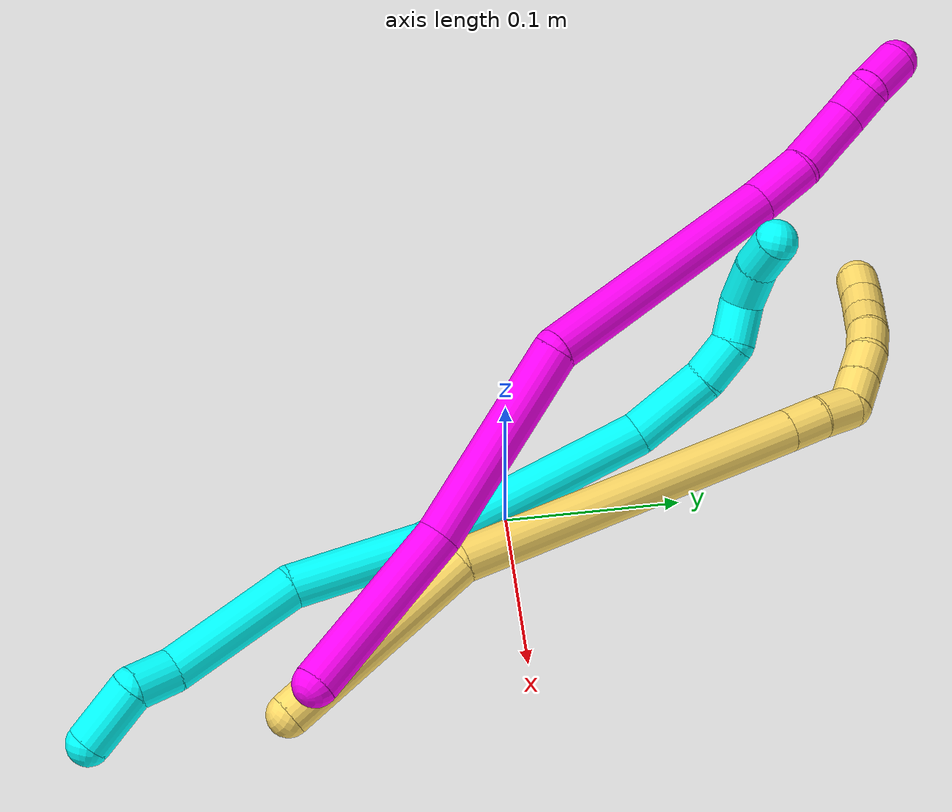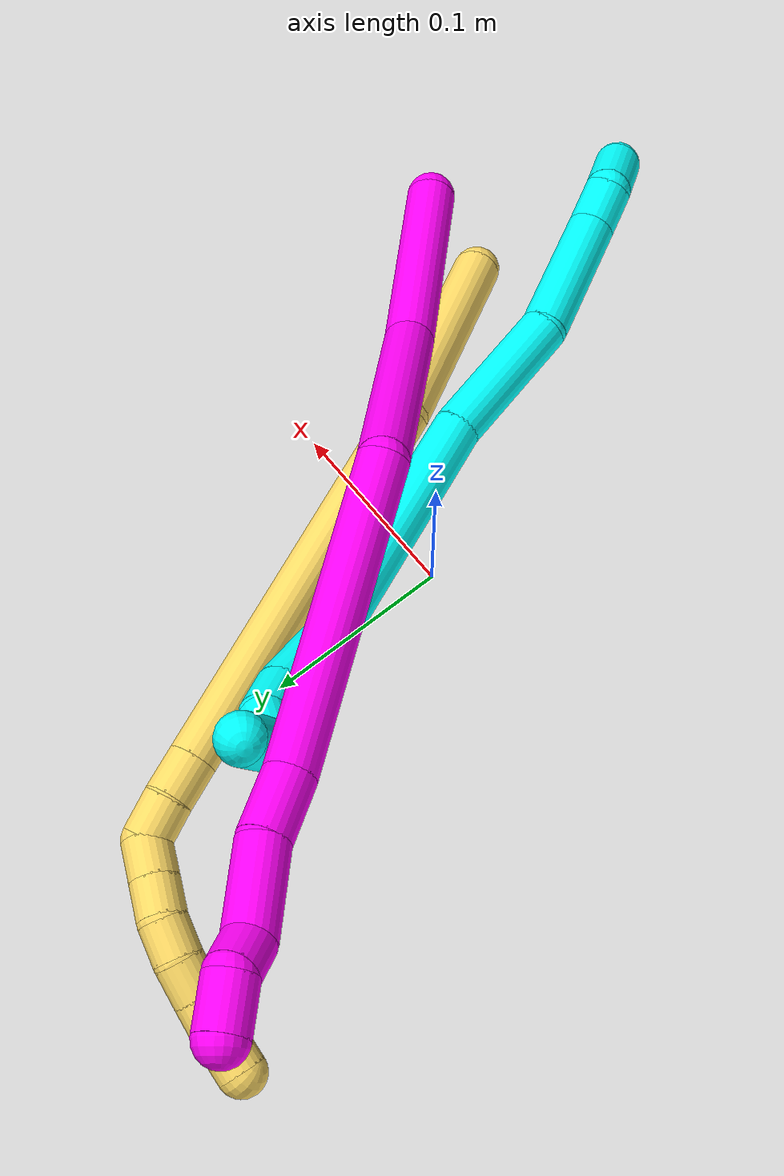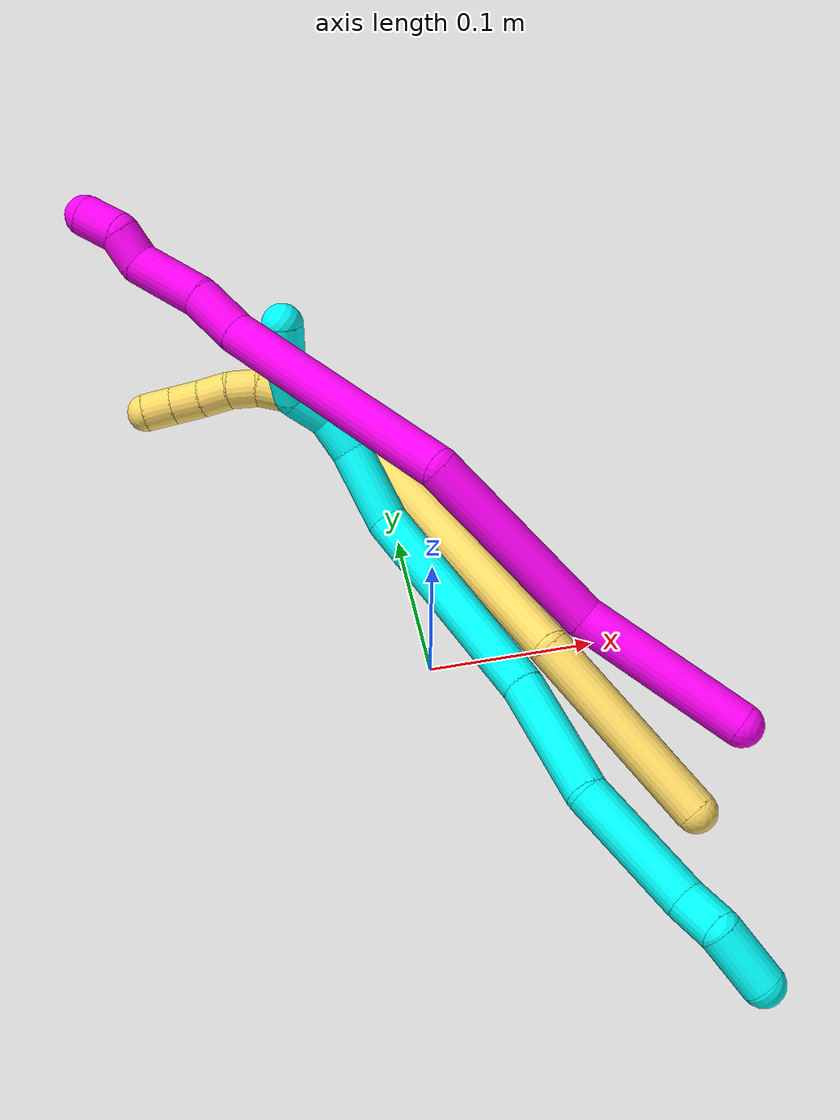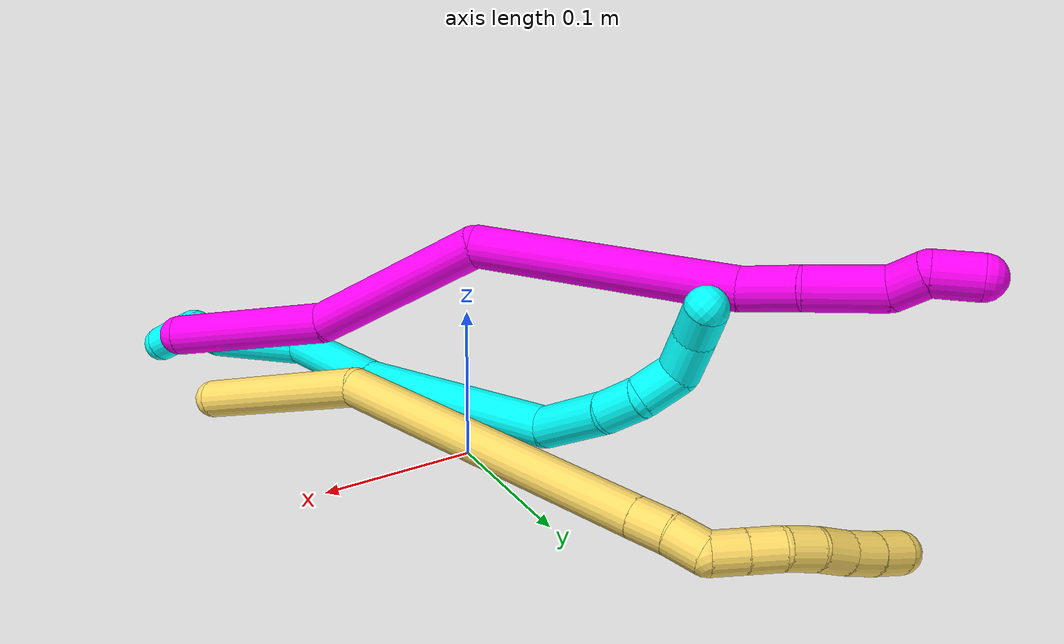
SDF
<sdf version="1.7">
 <world name="default">
  <model name="3">
   <static>0</static>
   <link name="3">
    <collision name="collision-cylinder-e_1_1_4">
     <pose>-0.006565 0.005993 -0.016385 -2.79097 -0.359916 1.5975</pose>
     <geometry><cylinder><radius>0.0125</radius><length>0.037282</length></cylinder></geometry>
     <surface>
      <friction><ode><mu>1.16</mu><mu2>1.16</mu2><slip1>0</slip1><slip2>0</slip2></ode></friction>
      <contact><ode><kp>1e+06</kp><kd>1</kd><max_vel>0</max_vel><min_depth>0.001</min_depth></ode></contact>
     </surface>
    </collision>
    <visual name="visual-cylinder-e_1_1_4">
     <pose>-0.006565 0.005993 -0.016385 -2.79097 -0.359916 1.5975</pose>
     <geometry><cylinder><radius>0.0125</radius><length>0.037282</length></cylinder></geometry>
     <material><ambient>0.003922 1 0.996078 1</ambient></material>
    </visual>
    <collision name="collision-cylinder-e_2_4_5">
     <pose>-0.017723 0.022373 -0.038076 -2.04301 -0.375073 0.60123</pose>
     <geometry><cylinder><radius>0.0125</radius><length>0.025071</length></cylinder></geometry>
     <surface>
      <friction><ode><mu>1.16</mu><mu2>1.16</mu2><slip1>0</slip1><slip2>0</slip2></ode></friction>
      <contact><ode><kp>1e+06</kp><kd>1</kd><max_vel>0</max_vel><min_depth>0.001</min_depth></ode></contact>
     </surface>
    </collision>
    <visual name="visual-cylinder-e_2_4_5">
     <pose>-0.017723 0.022373 -0.038076 -2.04301 -0.375073 0.60123</pose>
     <geometry><cylinder><radius>0.0125</radius><length>0.025071</length></cylinder></geometry>
     <material><ambient>0.003922 1 0.996078 1</ambient></material>
    </visual>
    <collision name="collision-cylinder-e_3_5_6">
     <pose>-0.038029 0.057777 -0.068679 -2.36178 -0.415912 0.948729</pose>
     <geometry><cylinder><radius>0.0125</radius><length>0.077788</length></cylinder></geometry>
     <surface>
      <friction><ode><mu>1.16</mu><mu2>1.16</mu2><slip1>0</slip1><slip2>0</slip2></ode></friction>
      <contact><ode><kp>1e+06</kp><kd>1</kd><max_vel>0</max_vel><min_depth>0.001</min_depth></ode></contact>
     </surface>
    </collision>
    <visual name="visual-cylinder-e_3_5_6">
     <pose>-0.038029 0.057777 -0.068679 -2.36178 -0.415912 0.948729</pose>
     <geometry><cylinder><radius>0.0125</radius><length>0.077788</length></cylinder></geometry>
     <material><ambient>0.003922 1 0.996078 1</ambient></material>
    </visual>
    <collision name="collision-cylinder-e_4_6_7">
     <pose>-0.076836 0.108616 -0.110086 -2.12857 -0.649076 1.09025</pose>
     <geometry><cylinder><radius>0.0125</radius><length>0.076408</length></cylinder></geometry>
     <surface>
      <friction><ode><mu>1.16</mu><mu2>1.16</mu2><slip1>0</slip1><slip2>0</slip2></ode></friction>
      <contact><ode><kp>1e+06</kp><kd>1</kd><max_vel>0</max_vel><min_depth>0.001</min_depth></ode></contact>
     </surface>
    </collision>
    <visual name="visual-cylinder-e_4_6_7">
     <pose>-0.076836 0.108616 -0.110086 -2.12857 -0.649076 1.09025</pose>
     <geometry><cylinder><radius>0.0125</radius><length>0.076408</length></cylinder></geometry>
     <material><ambient>0.003922 1 0.996078 1</ambient></material>
    </visual>
    <collision name="collision-cylinder-e_5_7_8">
     <pose>-0.133148 0.181939 -0.163761 -2.23992 -0.501727 0.97374</pose>
     <geometry><cylinder><radius>0.0125</radius><length>0.138147</length></cylinder></geometry>
     <surface>
      <friction><ode><mu>1.16</mu><mu2>1.16</mu2><slip1>0</slip1><slip2>0</slip2></ode></friction>
      <contact><ode><kp>1e+06</kp><kd>1</kd><max_vel>0</max_vel><min_depth>0.001</min_depth></ode></contact>
     </surface>
    </collision>
    <visual name="visual-cylinder-e_5_7_8">
     <pose>-0.133148 0.181939 -0.163761 -2.23992 -0.501727 0.97374</pose>
     <geometry><cylinder><radius>0.0125</radius><length>0.138147</length></cylinder></geometry>
     <material><ambient>0.003922 1 0.996078 1</ambient></material>
    </visual>
    <collision name="collision-cylinder-e_6_8_9">
     <pose>-0.179841 0.236913 -0.219996 -2.76085 -0.590294 2.01173</pose>
     <geometry><cylinder><radius>0.0125</radius><length>0.04841</length></cylinder></geometry>
     <surface>
      <friction><ode><mu>1.16</mu><mu2>1.16</mu2><slip1>0</slip1><slip2>0</slip2></ode></friction>
      <contact><ode><kp>1e+06</kp><kd>1</kd><max_vel>0</max_vel><min_depth>0.001</min_depth></ode></contact>
     </surface>
    </collision>
    <visual name="visual-cylinder-e_6_8_9">
     <pose>-0.179841 0.236913 -0.219996 -2.76085 -0.590294 2.01173</pose>
     <geometry><cylinder><radius>0.0125</radius><length>0.04841</length></cylinder></geometry>
     <material><ambient>0.003922 1 0.996078 1</ambient></material>
    </visual>
    <collision name="collision-cylinder-e_7_9_10">
     <pose>-0.198229 0.247604 -0.249757 -2.85924 -0.402355 1.92432</pose>
     <geometry><cylinder><radius>0.0125</radius><length>0.025104</length></cylinder></geometry>
     <surface>
      <friction><ode><mu>1.16</mu><mu2>1.16</mu2><slip1>0</slip1><slip2>0</slip2></ode></friction>
      <contact><ode><kp>1e+06</kp><kd>1</kd><max_vel>0</max_vel><min_depth>0.001</min_depth></ode></contact>
     </surface>
    </collision>
    <visual name="visual-cylinder-e_7_9_10">
     <pose>-0.198229 0.247604 -0.249757 -2.85924 -0.402355 1.92432</pose>
     <geometry><cylinder><radius>0.0125</radius><length>0.025104</length></cylinder></geometry>
     <material><ambient>0.003922 1 0.996078 1</ambient></material>
    </visual>
    <collision name="collision-cylinder-e_8_10_11">
     <pose>-0.202231 0.253259 -0.272748 -2.9396 0.075047 -0.709535</pose>
     <geometry><cylinder><radius>0.0125</radius><length>0.024361</length></cylinder></geometry>
     <surface>
      <friction><ode><mu>1.16</mu><mu2>1.16</mu2><slip1>0</slip1><slip2>0</slip2></ode></friction>
      <contact><ode><kp>1e+06</kp><kd>1</kd><max_vel>0</max_vel><min_depth>0.001</min_depth></ode></contact>
     </surface>
    </collision>
    <visual name="visual-cylinder-e_8_10_11">
     <pose>-0.202231 0.253259 -0.272748 -2.9396 0.075047 -0.709535</pose>
     <geometry><cylinder><radius>0.0125</radius><length>0.024361</length></cylinder></geometry>
     <material><ambient>0.003922 1 0.996078 1</ambient></material>
    </visual>
    <collision name="collision-cylinder-e_9_11_12">
     <pose>-0.206082 0.250977 -0.295671 2.73711 -0.378209 -1.50195</pose>
     <geometry><cylinder><radius>0.0125</radius><length>0.025804</length></cylinder></geometry>
     <surface>
      <friction><ode><mu>1.16</mu><mu2>1.16</mu2><slip1>0</slip1><slip2>0</slip2></ode></friction>
      <contact><ode><kp>1e+06</kp><kd>1</kd><max_vel>0</max_vel><min_depth>0.001</min_depth></ode></contact>
     </surface>
    </collision>
    <visual name="visual-cylinder-e_9_11_12">
     <pose>-0.206082 0.250977 -0.295671 2.73711 -0.378209 -1.50195</pose>
     <geometry><cylinder><radius>0.0125</radius><length>0.025804</length></cylinder></geometry>
     <material><ambient>0.003922 1 0.996078 1</ambient></material>
    </visual>
    <collision name="collision-cylinder-e_10_12_2">
     <pose>-0.21702 0.242425 -0.3147 2.69514 -0.607684 -1.88829</pose>
     <geometry><cylinder><radius>0.0125</radius><length>0.021625</length></cylinder></geometry>
     <surface>
      <friction><ode><mu>1.16</mu><mu2>1.16</mu2><slip1>0</slip1><slip2>0</slip2></ode></friction>
      <contact><ode><kp>1e+06</kp><kd>1</kd><max_vel>0</max_vel><min_depth>0.001</min_depth></ode></contact>
     </surface>
    </collision>
    <visual name="visual-cylinder-e_10_12_2">
     <pose>-0.21702 0.242425 -0.3147 2.69514 -0.607684 -1.88829</pose>
     <geometry><cylinder><radius>0.0125</radius><length>0.021625</length></cylinder></geometry>
     <material><ambient>0.003922 1 0.996078 1</ambient></material>
    </visual>
    <collision name="collision-sphere-2">
     <pose>-0.223193 0.238593 -0.322706 0 -0 0</pose>
     <geometry><sphere><radius>0.0125</radius></sphere></geometry>
     <surface>
      <friction><ode><mu>1.16</mu><mu2>1.16</mu2><slip1>0</slip1><slip2>0</slip2></ode></friction>
      <contact><ode><kp>1e+06</kp><kd>1</kd><max_vel>0</max_vel><min_depth>0.001</min_depth></ode></contact>
     </surface>
    </collision>
    <visual name="visual-sphere-2">
     <pose>-0.223193 0.238593 -0.322706 0 -0 0</pose>
     <geometry><sphere><radius>0.0125</radius></sphere></geometry>
     <material><ambient>0.003922 1 0.996078 1</ambient></material>
    </visual>
    <collision name="collision-sphere-12">
     <pose>-0.210846 0.246258 -0.306693 0 -0 0</pose>
     <geometry><sphere><radius>0.0125</radius></sphere></geometry>
     <surface>
      <friction><ode><mu>1.16</mu><mu2>1.16</mu2><slip1>0</slip1><slip2>0</slip2></ode></friction>
      <contact><ode><kp>1e+06</kp><kd>1</kd><max_vel>0</max_vel><min_depth>0.001</min_depth></ode></contact>
     </surface>
    </collision>
    <visual name="visual-sphere-12">
     <pose>-0.210846 0.246258 -0.306693 0 -0 0</pose>
     <geometry><sphere><radius>0.0125</radius></sphere></geometry>
     <material><ambient>0.003922 1 0.996078 1</ambient></material>
    </visual>
    <collision name="collision-sphere-11">
     <pose>-0.201318 0.255695 -0.284648 0 -0 0</pose>
     <geometry><sphere><radius>0.0125</radius></sphere></geometry>
     <surface>
      <friction><ode><mu>1.16</mu><mu2>1.16</mu2><slip1>0</slip1><slip2>0</slip2></ode></friction>
      <contact><ode><kp>1e+06</kp><kd>1</kd><max_vel>0</max_vel><min_depth>0.001</min_depth></ode></contact>
     </surface>
    </collision>
    <visual name="visual-sphere-11">
     <pose>-0.201318 0.255695 -0.284648 0 -0 0</pose>
     <geometry><sphere><radius>0.0125</radius></sphere></geometry>
     <material><ambient>0.003922 1 0.996078 1</ambient></material>
    </visual>
    <collision name="collision-sphere-10">
     <pose>-0.203144 0.250822 -0.260849 0 -0 0</pose>
     <geometry><sphere><radius>0.0125</radius></sphere></geometry>
     <surface>
      <friction><ode><mu>1.16</mu><mu2>1.16</mu2><slip1>0</slip1><slip2>0</slip2></ode></friction>
      <contact><ode><kp>1e+06</kp><kd>1</kd><max_vel>0</max_vel><min_depth>0.001</min_depth></ode></contact>
     </surface>
    </collision>
    <visual name="visual-sphere-10">
     <pose>-0.203144 0.250822 -0.260849 0 -0 0</pose>
     <geometry><sphere><radius>0.0125</radius></sphere></geometry>
     <material><ambient>0.003922 1 0.996078 1</ambient></material>
    </visual>
    <collision name="collision-sphere-9">
     <pose>-0.193314 0.244386 -0.238664 0 -0 0</pose>
     <geometry><sphere><radius>0.0125</radius></sphere></geometry>
     <surface>
      <friction><ode><mu>1.16</mu><mu2>1.16</mu2><slip1>0</slip1><slip2>0</slip2></ode></friction>
      <contact><ode><kp>1e+06</kp><kd>1</kd><max_vel>0</max_vel><min_depth>0.001</min_depth></ode></contact>
     </surface>
    </collision>
    <visual name="visual-sphere-9">
     <pose>-0.193314 0.244386 -0.238664 0 -0 0</pose>
     <geometry><sphere><radius>0.0125</radius></sphere></geometry>
     <material><ambient>0.003922 1 0.996078 1</ambient></material>
    </visual>
    <collision name="collision-sphere-4">
     <pose>-0.013131 0.011985 -0.03277 0 -0 0</pose>
     <geometry><sphere><radius>0.0125</radius></sphere></geometry>
     <surface>
      <friction><ode><mu>1.16</mu><mu2>1.16</mu2><slip1>0</slip1><slip2>0</slip2></ode></friction>
      <contact><ode><kp>1e+06</kp><kd>1</kd><max_vel>0</max_vel><min_depth>0.001</min_depth></ode></contact>
     </surface>
    </collision>
    <visual name="visual-sphere-4">
     <pose>-0.013131 0.011985 -0.03277 0 -0 0</pose>
     <geometry><sphere><radius>0.0125</radius></sphere></geometry>
     <material><ambient>0.003922 1 0.996078 1</ambient></material>
    </visual>
    <collision name="collision-sphere-1">
     <geometry><sphere><radius>0.0125</radius></sphere></geometry>
     <surface>
      <friction><ode><mu>1.16</mu><mu2>1.16</mu2><slip1>0</slip1><slip2>0</slip2></ode></friction>
      <contact><ode><kp>1e+06</kp><kd>1</kd><max_vel>0</max_vel><min_depth>0.001</min_depth></ode></contact>
     </surface>
    </collision>
    <visual name="visual-sphere-1">
     <geometry><sphere><radius>0.0125</radius></sphere></geometry>
     <material><ambient>0.003922 1 0.996078 1</ambient></material>
    </visual>
    <collision name="collision-sphere-8">
     <pose>-0.166369 0.229441 -0.201327 0 -0 0</pose>
     <geometry><sphere><radius>0.0125</radius></sphere></geometry>
     <surface>
      <friction><ode><mu>1.16</mu><mu2>1.16</mu2><slip1>0</slip1><slip2>0</slip2></ode></friction>
      <contact><ode><kp>1e+06</kp><kd>1</kd><max_vel>0</max_vel><min_depth>0.001</min_depth></ode></contact>
     </surface>
    </collision>
    <visual name="visual-sphere-8">
     <pose>-0.166369 0.229441 -0.201327 0 -0 0</pose>
     <geometry><sphere><radius>0.0125</radius></sphere></geometry>
     <material><ambient>0.003922 1 0.996078 1</ambient></material>
    </visual>
    <collision name="collision-sphere-5">
     <pose>-0.022315 0.032761 -0.043381 0 -0 0</pose>
     <geometry><sphere><radius>0.0125</radius></sphere></geometry>
     <surface>
      <friction><ode><mu>1.16</mu><mu2>1.16</mu2><slip1>0</slip1><slip2>0</slip2></ode></friction>
      <contact><ode><kp>1e+06</kp><kd>1</kd><max_vel>0</max_vel><min_depth>0.001</min_depth></ode></contact>
     </surface>
    </collision>
    <visual name="visual-sphere-5">
     <pose>-0.022315 0.032761 -0.043381 0 -0 0</pose>
     <geometry><sphere><radius>0.0125</radius></sphere></geometry>
     <material><ambient>0.003922 1 0.996078 1</ambient></material>
    </visual>
    <collision name="collision-sphere-6">
     <pose>-0.053743 0.082794 -0.093977 0 -0 0</pose>
     <geometry><sphere><radius>0.0125</radius></sphere></geometry>
     <surface>
      <friction><ode><mu>1.16</mu><mu2>1.16</mu2><slip1>0</slip1><slip2>0</slip2></ode></friction>
      <contact><ode><kp>1e+06</kp><kd>1</kd><max_vel>0</max_vel><min_depth>0.001</min_depth></ode></contact>
     </surface>
    </collision>
    <visual name="visual-sphere-6">
     <pose>-0.053743 0.082794 -0.093977 0 -0 0</pose>
     <geometry><sphere><radius>0.0125</radius></sphere></geometry>
     <material><ambient>0.003922 1 0.996078 1</ambient></material>
    </visual>
    <collision name="collision-sphere-7">
     <pose>-0.099928 0.134438 -0.126195 0 -0 0</pose>
     <geometry><sphere><radius>0.0125</radius></sphere></geometry>
     <surface>
      <friction><ode><mu>1.16</mu><mu2>1.16</mu2><slip1>0</slip1><slip2>0</slip2></ode></friction>
      <contact><ode><kp>1e+06</kp><kd>1</kd><max_vel>0</max_vel><min_depth>0.001</min_depth></ode></contact>
     </surface>
    </collision>
    <visual name="visual-sphere-7">
     <pose>-0.099928 0.134438 -0.126195 0 -0 0</pose>
     <geometry><sphere><radius>0.0125</radius></sphere></geometry>
     <material><ambient>0.003922 1 0.996078 1</ambient></material>
    </visual>
    <inertial>
     <pose>-0.113064 0.148571 -0.151883 0 -0 0</pose>
     <mass>0.5</mass>
     <inertia><ixx>0.000364</ixx><ixy>0</ixy><ixz>0</ixz><iyy>0.000254</iyy><iyz>0</iyz><izz>-8e-05</izz></inertia>
    </inertial>
   </link>
   <pose>0.129118 -0.239491 0.011499 -2.42443 0.243796 -2.23716</pose>
  </model>
  <model name="5">
   <static>0</static>
   <link name="5">
    <collision name="collision-cylinder-e_1_1_4">
     <pose>0.007326 0.05635 -0.024765 -1.98487 0.118465 -0.18118</pose>
     <geometry><cylinder><radius>0.0125</radius><length>0.123972</length></cylinder></geometry>
     <surface>
      <friction><ode><mu>1.16</mu><mu2>1.16</mu2><slip1>0</slip1><slip2>0</slip2></ode></friction>
      <contact><ode><kp>1e+06</kp><kd>1</kd><max_vel>0</max_vel><min_depth>0.001</min_depth></ode></contact>
     </surface>
    </collision>
    <visual name="visual-cylinder-e_1_1_4">
     <pose>0.007326 0.05635 -0.024765 -1.98487 0.118465 -0.18118</pose>
     <geometry><cylinder><radius>0.0125</radius><length>0.123972</length></cylinder></geometry>
     <material><ambient>1 0.858824 0.4 1</ambient></material>
    </visual>
    <collision name="collision-cylinder-e_2_4_5">
     <pose>0.016742 0.185065 -0.125764 -2.38222 0.019878 -0.049806</pose>
     <geometry><cylinder><radius>0.0125</radius><length>0.210266</length></cylinder></geometry>
     <surface>
      <friction><ode><mu>1.16</mu><mu2>1.16</mu2><slip1>0</slip1><slip2>0</slip2></ode></friction>
      <contact><ode><kp>1e+06</kp><kd>1</kd><max_vel>0</max_vel><min_depth>0.001</min_depth></ode></contact>
     </surface>
    </collision>
    <visual name="visual-cylinder-e_2_4_5">
     <pose>0.016742 0.185065 -0.125764 -2.38222 0.019878 -0.049806</pose>
     <geometry><cylinder><radius>0.0125</radius><length>0.210266</length></cylinder></geometry>
     <material><ambient>1 0.858824 0.4 1</ambient></material>
    </visual>
    <collision name="collision-cylinder-e_3_5_6">
     <pose>0.019048 0.265312 -0.210167 -2.37411 0.019041 -0.047152</pose>
     <geometry><cylinder><radius>0.0125</radius><length>0.022704</length></cylinder></geometry>
     <surface>
      <friction><ode><mu>1.16</mu><mu2>1.16</mu2><slip1>0</slip1><slip2>0</slip2></ode></friction>
      <contact><ode><kp>1e+06</kp><kd>1</kd><max_vel>0</max_vel><min_depth>0.001</min_depth></ode></contact>
     </surface>
    </collision>
    <visual name="visual-cylinder-e_3_5_6">
     <pose>0.019048 0.265312 -0.210167 -2.37411 0.019041 -0.047152</pose>
     <geometry><cylinder><radius>0.0125</radius><length>0.022704</length></cylinder></geometry>
     <material><ambient>1 0.858824 0.4 1</ambient></material>
    </visual>
    <collision name="collision-cylinder-e_4_6_7">
     <pose>0.018415 0.280164 -0.226853 -2.45569 -0.076924 0.214713</pose>
     <geometry><cylinder><radius>0.0125</radius><length>0.022079</length></cylinder></geometry>
     <surface>
      <friction><ode><mu>1.16</mu><mu2>1.16</mu2><slip1>0</slip1><slip2>0</slip2></ode></friction>
      <contact><ode><kp>1e+06</kp><kd>1</kd><max_vel>0</max_vel><min_depth>0.001</min_depth></ode></contact>
     </surface>
    </collision>
    <visual name="visual-cylinder-e_4_6_7">
     <pose>0.018415 0.280164 -0.226853 -2.45569 -0.076924 0.214713</pose>
     <geometry><cylinder><radius>0.0125</radius><length>0.022079</length></cylinder></geometry>
     <material><ambient>1 0.858824 0.4 1</ambient></material>
    </visual>
    <collision name="collision-cylinder-e_5_7_8">
     <pose>0.012608 0.296019 -0.237465 -1.80227 -0.497702 0.621178</pose>
     <geometry><cylinder><radius>0.0125</radius><length>0.020774</length></cylinder></geometry>
     <surface>
      <friction><ode><mu>1.16</mu><mu2>1.16</mu2><slip1>0</slip1><slip2>0</slip2></ode></friction>
      <contact><ode><kp>1e+06</kp><kd>1</kd><max_vel>0</max_vel><min_depth>0.001</min_depth></ode></contact>
     </surface>
    </collision>
    <visual name="visual-cylinder-e_5_7_8">
     <pose>0.012608 0.296019 -0.237465 -1.80227 -0.497702 0.621178</pose>
     <geometry><cylinder><radius>0.0125</radius><length>0.020774</length></cylinder></geometry>
     <material><ambient>1 0.858824 0.4 1</ambient></material>
    </visual>
    <collision name="collision-cylinder-e_6_8_9">
     <pose>0.002899 0.313481 -0.241581 -1.8023 -0.494274 0.617016</pose>
     <geometry><cylinder><radius>0.0125</radius><length>0.020025</length></cylinder></geometry>
     <surface>
      <friction><ode><mu>1.16</mu><mu2>1.16</mu2><slip1>0</slip1><slip2>0</slip2></ode></friction>
      <contact><ode><kp>1e+06</kp><kd>1</kd><max_vel>0</max_vel><min_depth>0.001</min_depth></ode></contact>
     </surface>
    </collision>
    <visual name="visual-cylinder-e_6_8_9">
     <pose>0.002899 0.313481 -0.241581 -1.8023 -0.494274 0.617016</pose>
     <geometry><cylinder><radius>0.0125</radius><length>0.020025</length></cylinder></geometry>
     <material><ambient>1 0.858824 0.4 1</ambient></material>
    </visual>
    <collision name="collision-cylinder-e_7_9_10">
     <pose>-0.008781 0.329027 -0.245468 -1.8323 -0.765519 0.966167</pose>
     <geometry><cylinder><radius>0.0125</radius><length>0.020004</length></cylinder></geometry>
     <surface>
      <friction><ode><mu>1.16</mu><mu2>1.16</mu2><slip1>0</slip1><slip2>0</slip2></ode></friction>
      <contact><ode><kp>1e+06</kp><kd>1</kd><max_vel>0</max_vel><min_depth>0.001</min_depth></ode></contact>
     </surface>
    </collision>
    <visual name="visual-cylinder-e_7_9_10">
     <pose>-0.008781 0.329027 -0.245468 -1.8323 -0.765519 0.966167</pose>
     <geometry><cylinder><radius>0.0125</radius><length>0.020004</length></cylinder></geometry>
     <material><ambient>1 0.858824 0.4 1</ambient></material>
    </visual>
    <collision name="collision-cylinder-e_8_10_11">
     <pose>-0.023942 0.341365 -0.249267 -1.91656 -0.964314 1.28034</pose>
     <geometry><cylinder><radius>0.0125</radius><length>0.020034</length></cylinder></geometry>
     <surface>
      <friction><ode><mu>1.16</mu><mu2>1.16</mu2><slip1>0</slip1><slip2>0</slip2></ode></friction>
      <contact><ode><kp>1e+06</kp><kd>1</kd><max_vel>0</max_vel><min_depth>0.001</min_depth></ode></contact>
     </surface>
    </collision>
    <visual name="visual-cylinder-e_8_10_11">
     <pose>-0.023942 0.341365 -0.249267 -1.91656 -0.964314 1.28034</pose>
     <geometry><cylinder><radius>0.0125</radius><length>0.020034</length></cylinder></geometry>
     <material><ambient>1 0.858824 0.4 1</ambient></material>
    </visual>
    <collision name="collision-cylinder-e_9_11_12">
     <pose>-0.04016 0.352644 -0.252642 -1.80994 -0.920127 1.1256</pose>
     <geometry><cylinder><radius>0.0125</radius><length>0.020076</length></cylinder></geometry>
     <surface>
      <friction><ode><mu>1.16</mu><mu2>1.16</mu2><slip1>0</slip1><slip2>0</slip2></ode></friction>
      <contact><ode><kp>1e+06</kp><kd>1</kd><max_vel>0</max_vel><min_depth>0.001</min_depth></ode></contact>
     </surface>
    </collision>
    <visual name="visual-cylinder-e_9_11_12">
     <pose>-0.04016 0.352644 -0.252642 -1.80994 -0.920127 1.1256</pose>
     <geometry><cylinder><radius>0.0125</radius><length>0.020076</length></cylinder></geometry>
     <material><ambient>1 0.858824 0.4 1</ambient></material>
    </visual>
    <collision name="collision-cylinder-e_10_12_2">
     <pose>-0.056175 0.36452 -0.254845 -1.69781 -0.927559 1.03326</pose>
     <geometry><cylinder><radius>0.0125</radius><length>0.020065</length></cylinder></geometry>
     <surface>
      <friction><ode><mu>1.16</mu><mu2>1.16</mu2><slip1>0</slip1><slip2>0</slip2></ode></friction>
      <contact><ode><kp>1e+06</kp><kd>1</kd><max_vel>0</max_vel><min_depth>0.001</min_depth></ode></contact>
     </surface>
    </collision>
    <visual name="visual-cylinder-e_10_12_2">
     <pose>-0.056175 0.36452 -0.254845 -1.69781 -0.927559 1.03326</pose>
     <geometry><cylinder><radius>0.0125</radius><length>0.020065</length></cylinder></geometry>
     <material><ambient>1 0.858824 0.4 1</ambient></material>
    </visual>
    <collision name="collision-sphere-2">
     <pose>-0.064202 0.370489 -0.255607 0 -0 0</pose>
     <geometry><sphere><radius>0.0125</radius></sphere></geometry>
     <surface>
      <friction><ode><mu>1.16</mu><mu2>1.16</mu2><slip1>0</slip1><slip2>0</slip2></ode></friction>
      <contact><ode><kp>1e+06</kp><kd>1</kd><max_vel>0</max_vel><min_depth>0.001</min_depth></ode></contact>
     </surface>
    </collision>
    <visual name="visual-sphere-2">
     <pose>-0.064202 0.370489 -0.255607 0 -0 0</pose>
     <geometry><sphere><radius>0.0125</radius></sphere></geometry>
     <material><ambient>1 0.858824 0.4 1</ambient></material>
    </visual>
    <collision name="collision-sphere-12">
     <pose>-0.048147 0.358551 -0.254083 0 -0 0</pose>
     <geometry><sphere><radius>0.0125</radius></sphere></geometry>
     <surface>
      <friction><ode><mu>1.16</mu><mu2>1.16</mu2><slip1>0</slip1><slip2>0</slip2></ode></friction>
      <contact><ode><kp>1e+06</kp><kd>1</kd><max_vel>0</max_vel><min_depth>0.001</min_depth></ode></contact>
     </surface>
    </collision>
    <visual name="visual-sphere-12">
     <pose>-0.048147 0.358551 -0.254083 0 -0 0</pose>
     <geometry><sphere><radius>0.0125</radius></sphere></geometry>
     <material><ambient>1 0.858824 0.4 1</ambient></material>
    </visual>
    <collision name="collision-sphere-11">
     <pose>-0.032173 0.346737 -0.251202 0 -0 0</pose>
     <geometry><sphere><radius>0.0125</radius></sphere></geometry>
     <surface>
      <friction><ode><mu>1.16</mu><mu2>1.16</mu2><slip1>0</slip1><slip2>0</slip2></ode></friction>
      <contact><ode><kp>1e+06</kp><kd>1</kd><max_vel>0</max_vel><min_depth>0.001</min_depth></ode></contact>
     </surface>
    </collision>
    <visual name="visual-sphere-11">
     <pose>-0.032173 0.346737 -0.251202 0 -0 0</pose>
     <geometry><sphere><radius>0.0125</radius></sphere></geometry>
     <material><ambient>1 0.858824 0.4 1</ambient></material>
    </visual>
    <collision name="collision-sphere-10">
     <pose>-0.015712 0.335994 -0.247332 0 -0 0</pose>
     <geometry><sphere><radius>0.0125</radius></sphere></geometry>
     <surface>
      <friction><ode><mu>1.16</mu><mu2>1.16</mu2><slip1>0</slip1><slip2>0</slip2></ode></friction>
      <contact><ode><kp>1e+06</kp><kd>1</kd><max_vel>0</max_vel><min_depth>0.001</min_depth></ode></contact>
     </surface>
    </collision>
    <visual name="visual-sphere-10">
     <pose>-0.015712 0.335994 -0.247332 0 -0 0</pose>
     <geometry><sphere><radius>0.0125</radius></sphere></geometry>
     <material><ambient>1 0.858824 0.4 1</ambient></material>
    </visual>
    <collision name="collision-sphere-9">
     <pose>-0.001851 0.322061 -0.243603 0 -0 0</pose>
     <geometry><sphere><radius>0.0125</radius></sphere></geometry>
     <surface>
      <friction><ode><mu>1.16</mu><mu2>1.16</mu2><slip1>0</slip1><slip2>0</slip2></ode></friction>
      <contact><ode><kp>1e+06</kp><kd>1</kd><max_vel>0</max_vel><min_depth>0.001</min_depth></ode></contact>
     </surface>
    </collision>
    <visual name="visual-sphere-9">
     <pose>-0.001851 0.322061 -0.243603 0 -0 0</pose>
     <geometry><sphere><radius>0.0125</radius></sphere></geometry>
     <material><ambient>1 0.858824 0.4 1</ambient></material>
    </visual>
    <collision name="collision-sphere-4">
     <pose>0.014652 0.112699 -0.049529 0 -0 0</pose>
     <geometry><sphere><radius>0.0125</radius></sphere></geometry>
     <surface>
      <friction><ode><mu>1.16</mu><mu2>1.16</mu2><slip1>0</slip1><slip2>0</slip2></ode></friction>
      <contact><ode><kp>1e+06</kp><kd>1</kd><max_vel>0</max_vel><min_depth>0.001</min_depth></ode></contact>
     </surface>
    </collision>
    <visual name="visual-sphere-4">
     <pose>0.014652 0.112699 -0.049529 0 -0 0</pose>
     <geometry><sphere><radius>0.0125</radius></sphere></geometry>
     <material><ambient>1 0.858824 0.4 1</ambient></material>
    </visual>
    <collision name="collision-sphere-1">
     <geometry><sphere><radius>0.0125</radius></sphere></geometry>
     <surface>
      <friction><ode><mu>1.16</mu><mu2>1.16</mu2><slip1>0</slip1><slip2>0</slip2></ode></friction>
      <contact><ode><kp>1e+06</kp><kd>1</kd><max_vel>0</max_vel><min_depth>0.001</min_depth></ode></contact>
     </surface>
    </collision>
    <visual name="visual-sphere-1">
     <geometry><sphere><radius>0.0125</radius></sphere></geometry>
     <material><ambient>1 0.858824 0.4 1</ambient></material>
    </visual>
    <collision name="collision-sphere-8">
     <pose>0.007649 0.304902 -0.239558 0 -0 0</pose>
     <geometry><sphere><radius>0.0125</radius></sphere></geometry>
     <surface>
      <friction><ode><mu>1.16</mu><mu2>1.16</mu2><slip1>0</slip1><slip2>0</slip2></ode></friction>
      <contact><ode><kp>1e+06</kp><kd>1</kd><max_vel>0</max_vel><min_depth>0.001</min_depth></ode></contact>
     </surface>
    </collision>
    <visual name="visual-sphere-8">
     <pose>0.007649 0.304902 -0.239558 0 -0 0</pose>
     <geometry><sphere><radius>0.0125</radius></sphere></geometry>
     <material><ambient>1 0.858824 0.4 1</ambient></material>
    </visual>
    <collision name="collision-sphere-5">
     <pose>0.018831 0.257431 -0.201999 0 -0 0</pose>
     <geometry><sphere><radius>0.0125</radius></sphere></geometry>
     <surface>
      <friction><ode><mu>1.16</mu><mu2>1.16</mu2><slip1>0</slip1><slip2>0</slip2></ode></friction>
      <contact><ode><kp>1e+06</kp><kd>1</kd><max_vel>0</max_vel><min_depth>0.001</min_depth></ode></contact>
     </surface>
    </collision>
    <visual name="visual-sphere-5">
     <pose>0.018831 0.257431 -0.201999 0 -0 0</pose>
     <geometry><sphere><radius>0.0125</radius></sphere></geometry>
     <material><ambient>1 0.858824 0.4 1</ambient></material>
    </visual>
    <collision name="collision-sphere-6">
     <pose>0.019264 0.273192 -0.218335 0 -0 0</pose>
     <geometry><sphere><radius>0.0125</radius></sphere></geometry>
     <surface>
      <friction><ode><mu>1.16</mu><mu2>1.16</mu2><slip1>0</slip1><slip2>0</slip2></ode></friction>
      <contact><ode><kp>1e+06</kp><kd>1</kd><max_vel>0</max_vel><min_depth>0.001</min_depth></ode></contact>
     </surface>
    </collision>
    <visual name="visual-sphere-6">
     <pose>0.019264 0.273192 -0.218335 0 -0 0</pose>
     <geometry><sphere><radius>0.0125</radius></sphere></geometry>
     <material><ambient>1 0.858824 0.4 1</ambient></material>
    </visual>
    <collision name="collision-sphere-7">
     <pose>0.017567 0.287136 -0.235371 0 -0 0</pose>
     <geometry><sphere><radius>0.0125</radius></sphere></geometry>
     <surface>
      <friction><ode><mu>1.16</mu><mu2>1.16</mu2><slip1>0</slip1><slip2>0</slip2></ode></friction>
      <contact><ode><kp>1e+06</kp><kd>1</kd><max_vel>0</max_vel><min_depth>0.001</min_depth></ode></contact>
     </surface>
    </collision>
    <visual name="visual-sphere-7">
     <pose>0.017567 0.287136 -0.235371 0 -0 0</pose>
     <geometry><sphere><radius>0.0125</radius></sphere></geometry>
     <material><ambient>1 0.858824 0.4 1</ambient></material>
    </visual>
    <inertial>
     <pose>0.005997 0.1967 -0.13831 0 -0 0</pose>
     <mass>0.5</mass>
     <inertia>
      <ixx>0.000881</ixx>
      <ixy>0</ixy>
      <ixz>0</ixz>
      <iyy>-0.000662</iyy>
      <iyz>0</iyz>
      <izz>-0.000745</izz>
     </inertia>
    </inertial>
   </link>
   <pose>0.124869 -0.13258 0.012311 0.715372 -0.670594 0.456597</pose>
  </model>
  <model name="10">
   <static>0</static>
   <link name="10">
    <collision name="collision-cylinder-e_1_1_4">
     <pose>-0.007508 0.014812 0.048947 -0.293844 -0.145775 0.02161</pose>
     <geometry><cylinder><radius>0.0125</radius><length>0.103375</length></cylinder></geometry>
     <surface>
      <friction><ode><mu>1.16</mu><mu2>1.16</mu2><slip1>0</slip1><slip2>0</slip2></ode></friction>
      <contact><ode><kp>1e+06</kp><kd>1</kd><max_vel>0</max_vel><min_depth>0.001</min_depth></ode></contact>
     </surface>
    </collision>
    <visual name="visual-cylinder-e_1_1_4">
     <pose>-0.007508 0.014812 0.048947 -0.293844 -0.145775 0.02161</pose>
     <geometry><cylinder><radius>0.0125</radius><length>0.103375</length></cylinder></geometry>
     <material><ambient>1 0 0.964706 1</ambient></material>
    </visual>
    <collision name="collision-cylinder-e_2_4_5">
     <pose>-0.026461 0.063648 0.143396 -0.642072 -0.198785 0.066298</pose>
     <geometry><cylinder><radius>0.0125</radius><length>0.115914</length></cylinder></geometry>
     <surface>
      <friction><ode><mu>1.16</mu><mu2>1.16</mu2><slip1>0</slip1><slip2>0</slip2></ode></friction>
      <contact><ode><kp>1e+06</kp><kd>1</kd><max_vel>0</max_vel><min_depth>0.001</min_depth></ode></contact>
     </surface>
    </collision>
    <visual name="visual-cylinder-e_2_4_5">
     <pose>-0.026461 0.063648 0.143396 -0.642072 -0.198785 0.066298</pose>
     <geometry><cylinder><radius>0.0125</radius><length>0.115914</length></cylinder></geometry>
     <material><ambient>1 0 0.964706 1</ambient></material>
    </visual>
    <collision name="collision-cylinder-e_3_5_6">
     <pose>-0.056678 0.102022 0.264411 -0.057534 -0.243255 0.007034</pose>
     <geometry><cylinder><radius>0.0125</radius><length>0.155868</length></cylinder></geometry>
     <surface>
      <friction><ode><mu>1.16</mu><mu2>1.16</mu2><slip1>0</slip1><slip2>0</slip2></ode></friction>
      <contact><ode><kp>1e+06</kp><kd>1</kd><max_vel>0</max_vel><min_depth>0.001</min_depth></ode></contact>
     </surface>
    </collision>
    <visual name="visual-cylinder-e_3_5_6">
     <pose>-0.056678 0.102022 0.264411 -0.057534 -0.243255 0.007034</pose>
     <geometry><cylinder><radius>0.0125</radius><length>0.155868</length></cylinder></geometry>
     <material><ambient>1 0 0.964706 1</ambient></material>
    </visual>
    <collision name="collision-cylinder-e_4_6_7">
     <pose>-0.080899 0.110376 0.355101 -0.258009 -0.334204 0.043756</pose>
     <geometry><cylinder><radius>0.0125</radius><length>0.033229</length></cylinder></geometry>
     <surface>
      <friction><ode><mu>1.16</mu><mu2>1.16</mu2><slip1>0</slip1><slip2>0</slip2></ode></friction>
      <contact><ode><kp>1e+06</kp><kd>1</kd><max_vel>0</max_vel><min_depth>0.001</min_depth></ode></contact>
     </surface>
    </collision>
    <visual name="visual-cylinder-e_4_6_7">
     <pose>-0.080899 0.110376 0.355101 -0.258009 -0.334204 0.043756</pose>
     <geometry><cylinder><radius>0.0125</radius><length>0.033229</length></cylinder></geometry>
     <material><ambient>1 0 0.964706 1</ambient></material>
    </visual>
    <collision name="collision-cylinder-e_5_7_8">
     <pose>-0.088808 0.118525 0.391957 -0.188869 -0.110925 0.010517</pose>
     <geometry><cylinder><radius>0.0125</radius><length>0.044418</length></cylinder></geometry>
     <surface>
      <friction><ode><mu>1.16</mu><mu2>1.16</mu2><slip1>0</slip1><slip2>0</slip2></ode></friction>
      <contact><ode><kp>1e+06</kp><kd>1</kd><max_vel>0</max_vel><min_depth>0.001</min_depth></ode></contact>
     </surface>
    </collision>
    <visual name="visual-cylinder-e_5_7_8">
     <pose>-0.088808 0.118525 0.391957 -0.188869 -0.110925 0.010517</pose>
     <geometry><cylinder><radius>0.0125</radius><length>0.044418</length></cylinder></geometry>
     <material><ambient>1 0 0.964706 1</ambient></material>
    </visual>
    <collision name="collision-cylinder-e_6_8_9">
     <pose>-0.095237 0.12895 0.42122 -0.691783 -0.383329 0.139633</pose>
     <geometry><cylinder><radius>0.0125</radius><length>0.021234</length></cylinder></geometry>
     <surface>
      <friction><ode><mu>1.16</mu><mu2>1.16</mu2><slip1>0</slip1><slip2>0</slip2></ode></friction>
      <contact><ode><kp>1e+06</kp><kd>1</kd><max_vel>0</max_vel><min_depth>0.001</min_depth></ode></contact>
     </surface>
    </collision>
    <visual name="visual-cylinder-e_6_8_9">
     <pose>-0.095237 0.12895 0.42122 -0.691783 -0.383329 0.139633</pose>
     <geometry><cylinder><radius>0.0125</radius><length>0.021234</length></cylinder></geometry>
     <material><ambient>1 0 0.964706 1</ambient></material>
    </visual>
    <collision name="collision-cylinder-e_7_9_2">
     <pose>-0.100706 0.136649 0.441619 -0.11019 -0.115674 0.006387</pose>
     <geometry><cylinder><radius>0.0125</radius><length>0.025962</length></cylinder></geometry>
     <surface>
      <friction><ode><mu>1.16</mu><mu2>1.16</mu2><slip1>0</slip1><slip2>0</slip2></ode></friction>
      <contact><ode><kp>1e+06</kp><kd>1</kd><max_vel>0</max_vel><min_depth>0.001</min_depth></ode></contact>
     </surface>
    </collision>
    <visual name="visual-cylinder-e_7_9_2">
     <pose>-0.100706 0.136649 0.441619 -0.11019 -0.115674 0.006387</pose>
     <geometry><cylinder><radius>0.0125</radius><length>0.025962</length></cylinder></geometry>
     <material><ambient>1 0 0.964706 1</ambient></material>
    </visual>
    <collision name="collision-sphere-2">
     <pose>-0.102204 0.138067 0.454435 0 -0 0</pose>
     <geometry><sphere><radius>0.0125</radius></sphere></geometry>
     <surface>
      <friction><ode><mu>1.16</mu><mu2>1.16</mu2><slip1>0</slip1><slip2>0</slip2></ode></friction>
      <contact><ode><kp>1e+06</kp><kd>1</kd><max_vel>0</max_vel><min_depth>0.001</min_depth></ode></contact>
     </surface>
    </collision>
    <visual name="visual-sphere-2">
     <pose>-0.102204 0.138067 0.454435 0 -0 0</pose>
     <geometry><sphere><radius>0.0125</radius></sphere></geometry>
     <material><ambient>1 0 0.964706 1</ambient></material>
    </visual>
    <collision name="collision-sphere-9">
     <pose>-0.099208 0.135231 0.428803 0 -0 0</pose>
     <geometry><sphere><radius>0.0125</radius></sphere></geometry>
     <surface>
      <friction><ode><mu>1.16</mu><mu2>1.16</mu2><slip1>0</slip1><slip2>0</slip2></ode></friction>
      <contact><ode><kp>1e+06</kp><kd>1</kd><max_vel>0</max_vel><min_depth>0.001</min_depth></ode></contact>
     </surface>
    </collision>
    <visual name="visual-sphere-9">
     <pose>-0.099208 0.135231 0.428803 0 -0 0</pose>
     <geometry><sphere><radius>0.0125</radius></sphere></geometry>
     <material><ambient>1 0 0.964706 1</ambient></material>
    </visual>
    <collision name="collision-sphere-4">
     <pose>-0.015016 0.029623 0.097894 0 -0 0</pose>
     <geometry><sphere><radius>0.0125</radius></sphere></geometry>
     <surface>
      <friction><ode><mu>1.16</mu><mu2>1.16</mu2><slip1>0</slip1><slip2>0</slip2></ode></friction>
      <contact><ode><kp>1e+06</kp><kd>1</kd><max_vel>0</max_vel><min_depth>0.001</min_depth></ode></contact>
     </surface>
    </collision>
    <visual name="visual-sphere-4">
     <pose>-0.015016 0.029623 0.097894 0 -0 0</pose>
     <geometry><sphere><radius>0.0125</radius></sphere></geometry>
     <material><ambient>1 0 0.964706 1</ambient></material>
    </visual>
    <collision name="collision-sphere-1">
     <geometry><sphere><radius>0.0125</radius></sphere></geometry>
     <surface>
      <friction><ode><mu>1.16</mu><mu2>1.16</mu2><slip1>0</slip1><slip2>0</slip2></ode></friction>
      <contact><ode><kp>1e+06</kp><kd>1</kd><max_vel>0</max_vel><min_depth>0.001</min_depth></ode></contact>
     </surface>
    </collision>
    <visual name="visual-sphere-1">
     <geometry><sphere><radius>0.0125</radius></sphere></geometry>
     <material><ambient>1 0 0.964706 1</ambient></material>
    </visual>
    <collision name="collision-sphere-8">
     <pose>-0.091266 0.122669 0.413637 0 -0 0</pose>
     <geometry><sphere><radius>0.0125</radius></sphere></geometry>
     <surface>
      <friction><ode><mu>1.16</mu><mu2>1.16</mu2><slip1>0</slip1><slip2>0</slip2></ode></friction>
      <contact><ode><kp>1e+06</kp><kd>1</kd><max_vel>0</max_vel><min_depth>0.001</min_depth></ode></contact>
     </surface>
    </collision>
    <visual name="visual-sphere-8">
     <pose>-0.091266 0.122669 0.413637 0 -0 0</pose>
     <geometry><sphere><radius>0.0125</radius></sphere></geometry>
     <material><ambient>1 0 0.964706 1</ambient></material>
    </visual>
    <collision name="collision-sphere-5">
     <pose>-0.037907 0.097672 0.188897 0 -0 0</pose>
     <geometry><sphere><radius>0.0125</radius></sphere></geometry>
     <surface>
      <friction><ode><mu>1.16</mu><mu2>1.16</mu2><slip1>0</slip1><slip2>0</slip2></ode></friction>
      <contact><ode><kp>1e+06</kp><kd>1</kd><max_vel>0</max_vel><min_depth>0.001</min_depth></ode></contact>
     </surface>
    </collision>
    <visual name="visual-sphere-5">
     <pose>-0.037907 0.097672 0.188897 0 -0 0</pose>
     <geometry><sphere><radius>0.0125</radius></sphere></geometry>
     <material><ambient>1 0 0.964706 1</ambient></material>
    </visual>
    <collision name="collision-sphere-6">
     <pose>-0.075449 0.106371 0.339926 0 -0 0</pose>
     <geometry><sphere><radius>0.0125</radius></sphere></geometry>
     <surface>
      <friction><ode><mu>1.16</mu><mu2>1.16</mu2><slip1>0</slip1><slip2>0</slip2></ode></friction>
      <contact><ode><kp>1e+06</kp><kd>1</kd><max_vel>0</max_vel><min_depth>0.001</min_depth></ode></contact>
     </surface>
    </collision>
    <visual name="visual-sphere-6">
     <pose>-0.075449 0.106371 0.339926 0 -0 0</pose>
     <geometry><sphere><radius>0.0125</radius></sphere></geometry>
     <material><ambient>1 0 0.964706 1</ambient></material>
    </visual>
    <collision name="collision-sphere-7">
     <pose>-0.086349 0.114381 0.370277 0 -0 0</pose>
     <geometry><sphere><radius>0.0125</radius></sphere></geometry>
     <surface>
      <friction><ode><mu>1.16</mu><mu2>1.16</mu2><slip1>0</slip1><slip2>0</slip2></ode></friction>
      <contact><ode><kp>1e+06</kp><kd>1</kd><max_vel>0</max_vel><min_depth>0.001</min_depth></ode></contact>
     </surface>
    </collision>
    <visual name="visual-sphere-7">
     <pose>-0.086349 0.114381 0.370277 0 -0 0</pose>
     <geometry><sphere><radius>0.0125</radius></sphere></geometry>
     <material><ambient>1 0 0.964706 1</ambient></material>
    </visual>
    <inertial>
     <pose>-0.047895 0.080058 0.225028 0 -0 0</pose>
     <mass>0.5</mass>
     <inertia>
      <ixx>0.000561</ixx>
      <ixy>0</ixy>
      <ixz>0</ixz>
      <iyy>0.000563</iyy>
      <iyz>0</iyz>
      <izz>2.8e-05</izz>
     </inertia>
    </inertial>
   </link>
   <pose>0.147324 -0.117172 0.071238 1.68049 0.18767 -2.25366</pose>
  </model>
 </world>
</sdf>
